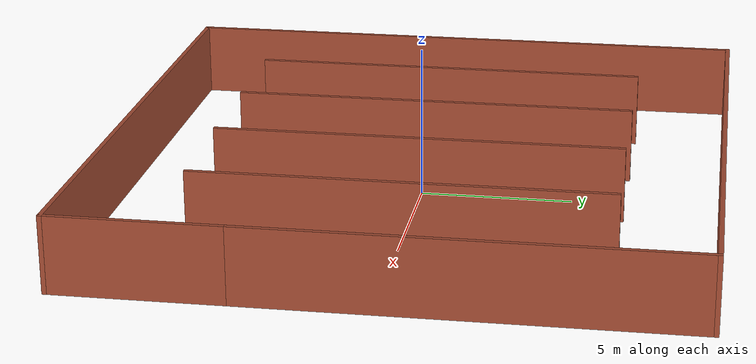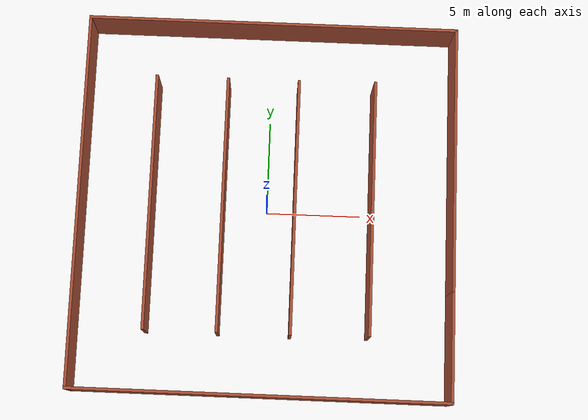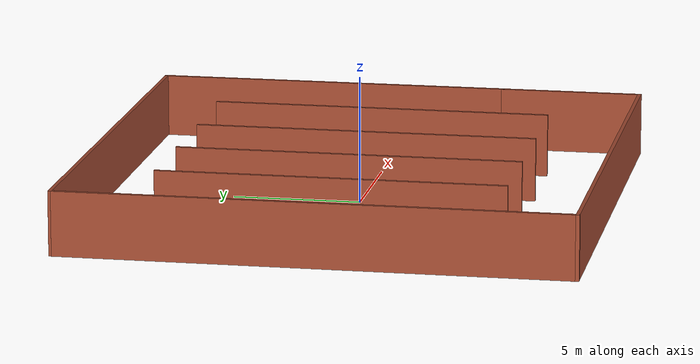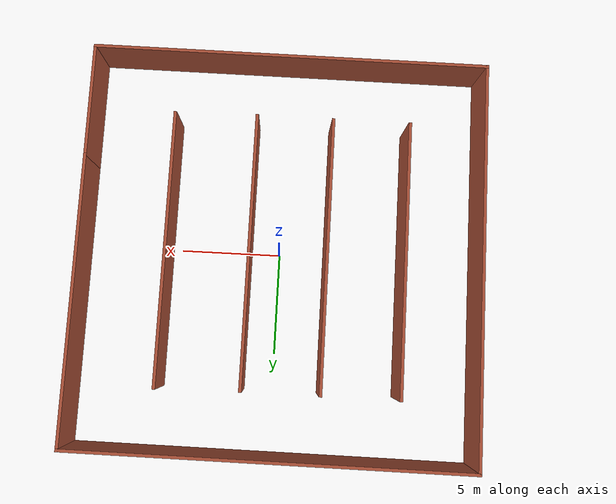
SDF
<?xml version='1.0'?>
<sdf version='1.7'>
  <model name='shopfloor'>
    <pose>-0.03 0.05 0 0 -0 0</pose>
    <link name='Wall_11'>
      <collision name='Wall_11_Collision'>
        <geometry>
          <box>
            <size>13.5 0.15 2.5</size>
          </box>
        </geometry>
        <pose>0 0 1.25 0 -0 0</pose>
      </collision>
      <visual name='Wall_11_Visual'>
        <pose>0 0 1.25 0 -0 0</pose>
        <geometry>
          <box>
            <size>13.5 0.15 2.5</size>
          </box>
        </geometry>
        <material>
          <script>
            <uri>file://media/materials/scripts/gazebo.material</uri>
            <name>Gazebo/Bricks</name>
          </script>
          <ambient>1 1 1 1</ambient>
        </material>
        <meta>
          <layer>0</layer>
        </meta>
      </visual>
      <pose>-6.06 0.003 0 0 -0 -1.5708</pose>
    </link>
    <link name='Wall_13'>
      <collision name='Wall_13_Collision'>
        <geometry>
          <box>
            <size>13.5 0.15 2.5</size>
          </box>
        </geometry>
        <pose>0 0 1.25 0 -0 0</pose>
      </collision>
      <visual name='Wall_13_Visual'>
        <pose>0 0 1.25 0 -0 0</pose>
        <geometry>
          <box>
            <size>13.5 0.15 2.5</size>
          </box>
        </geometry>
        <material>
          <script>
            <uri>file://media/materials/scripts/gazebo.material</uri>
            <name>Gazebo/Bricks</name>
          </script>
          <ambient>1 1 1 1</ambient>
        </material>
        <meta>
          <layer>0</layer>
        </meta>
      </visual>
      <pose>-2.278 0.002545 0 0 -0 -1.5708</pose>
    </link>
    <link name='Wall_15'>
      <collision name='Wall_15_Collision'>
        <geometry>
          <box>
            <size>13.5 0.15 2.5</size>
          </box>
        </geometry>
        <pose>0 0 1.25 0 -0 0</pose>
      </collision>
      <visual name='Wall_15_Visual'>
        <pose>0 0 1.25 0 -0 0</pose>
        <geometry>
          <box>
            <size>13.5 0.15 2.5</size>
          </box>
        </geometry>
        <material>
          <script>
            <uri>file://media/materials/scripts/gazebo.material</uri>
            <name>Gazebo/Bricks</name>
          </script>
          <ambient>1 1 1 1</ambient>
        </material>
        <meta>
          <layer>0</layer>
        </meta>
      </visual>
      <pose>1.49545 0.002545 0 0 -0 -1.5708</pose>
    </link>
    <link name='Wall_17'>
      <collision name='Wall_17_Collision'>
        <geometry>
          <box>
            <size>13.5 0.15 2.5</size>
          </box>
        </geometry>
        <pose>0 0 1.25 0 -0 0</pose>
      </collision>
      <visual name='Wall_17_Visual'>
        <pose>0 0 1.25 0 -0 0</pose>
        <geometry>
          <box>
            <size>13.5 0.15 2.5</size>
          </box>
        </geometry>
        <material>
          <script>
            <uri>file://media/materials/scripts/gazebo.material</uri>
            <name>Gazebo/Bricks</name>
          </script>
          <ambient>1 1 1 1</ambient>
        </material>
        <meta>
          <layer>0</layer>
        </meta>
      </visual>
      <pose>5.54391 0.084 0 0 -0 -1.5708</pose>
    </link>
    <link name='Wall_2'>
      <collision name='Wall_2_Collision'>
        <geometry>
          <box>
            <size>14.25 0.15 2.5</size>
          </box>
        </geometry>
        <pose>0 0 1.25 0 -0 0</pose>
      </collision>
      <visual name='Wall_2_Visual'>
        <pose>0 0 1.25 0 -0 0</pose>
        <geometry>
          <box>
            <size>14.25 0.15 2.5</size>
          </box>
        </geometry>
        <material>
          <script>
            <uri>file://media/materials/scripts/gazebo.material</uri>
            <name>Gazebo/Bricks</name>
          </script>
          <ambient>1 1 1 1</ambient>
        </material>
        <meta>
          <layer>0</layer>
        </meta>
      </visual>
      <pose>9.8 2.8 0 0 -0 1.5708</pose>
    </link>
    <link name='Wall_3'>
      <collision name='Wall_3_Collision'>
        <geometry>
          <box>
            <size>19.75 0.15 2.5</size>
          </box>
        </geometry>
        <pose>0 0 1.25 0 -0 0</pose>
      </collision>
      <visual name='Wall_3_Visual'>
        <pose>0 0 1.25 0 -0 0</pose>
        <geometry>
          <box>
            <size>19.75 0.15 2.5</size>
          </box>
        </geometry>
        <material>
          <script>
            <uri>file://media/materials/scripts/gazebo.material</uri>
            <name>Gazebo/Bricks</name>
          </script>
          <ambient>1 1 1 1</ambient>
        </material>
        <meta>
          <layer>0</layer>
        </meta>
      </visual>
      <pose>-0 9.85 0 0 -0 3.14159</pose>
    </link>
    <link name='Wall_7'>
      <collision name='Wall_7_Collision'>
        <geometry>
          <box>
            <size>5.75 0.15 2.5</size>
          </box>
        </geometry>
        <pose>0 0 1.25 0 -0 0</pose>
      </collision>
      <visual name='Wall_7_Visual'>
        <pose>0 0 1.25 0 -0 0</pose>
        <geometry>
          <box>
            <size>5.75 0.15 2.5</size>
          </box>
        </geometry>
        <material>
          <script>
            <uri>file://media/materials/scripts/gazebo.material</uri>
            <name>Gazebo/Bricks</name>
          </script>
          <ambient>1 1 1 1</ambient>
        </material>
        <meta>
          <layer>0</layer>
        </meta>
      </visual>
      <pose>9.8 -7.05 0 0 -0 -1.5708</pose>
    </link>
    <link name='Wall_8'>
      <collision name='Wall_8_Collision'>
        <geometry>
          <box>
            <size>19.75 0.15 2.5</size>
          </box>
        </geometry>
        <pose>0 0 1.25 0 -0 0</pose>
      </collision>
      <visual name='Wall_8_Visual'>
        <pose>0 0 1.25 0 -0 0</pose>
        <geometry>
          <box>
            <size>19.75 0.15 2.5</size>
          </box>
        </geometry>
        <material>
          <script>
            <uri>file://media/materials/scripts/gazebo.material</uri>
            <name>Gazebo/Bricks</name>
          </script>
          <ambient>1 1 1 1</ambient>
        </material>
        <meta>
          <layer>0</layer>
        </meta>
      </visual>
      <pose>-0 -9.85 0 0 -0 3.14159</pose>
    </link>
    <link name='Wall_9'>
      <collision name='Wall_9_Collision'>
        <geometry>
          <box>
            <size>19.75 0.15 2.5</size>
          </box>
        </geometry>
        <pose>0 0 1.25 0 -0 0</pose>
      </collision>
      <visual name='Wall_9_Visual'>
        <pose>0 0 1.25 0 -0 0</pose>
        <geometry>
          <box>
            <size>19.75 0.15 2.5</size>
          </box>
        </geometry>
        <material>
          <script>
            <uri>file://media/materials/scripts/gazebo.material</uri>
            <name>Gazebo/Bricks</name>
          </script>
          <ambient>1 1 1 1</ambient>
        </material>
        <meta>
          <layer>0</layer>
        </meta>
      </visual>
      <pose>-9.8 -0.05 0 0 -0 1.5708</pose>
    </link>
    <static>1</static>
  </model>
</sdf>
